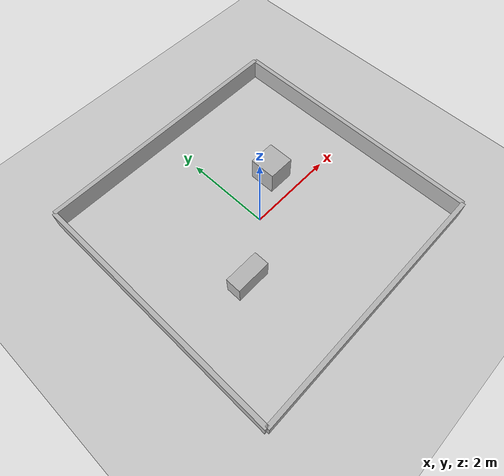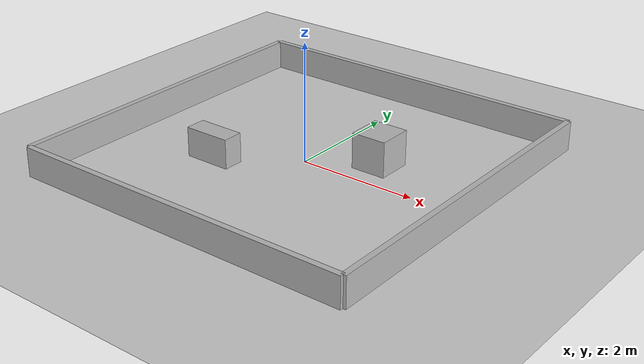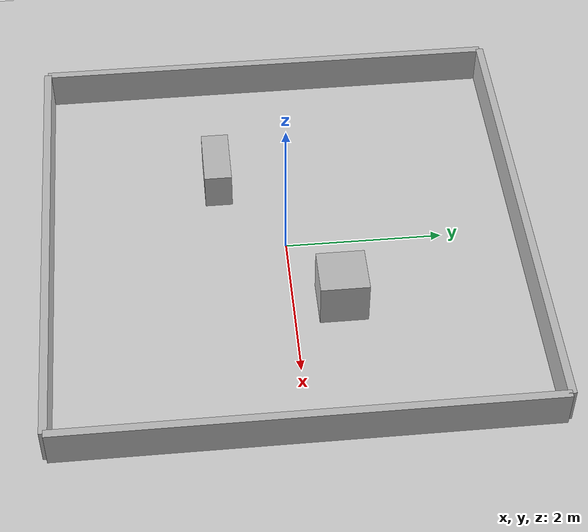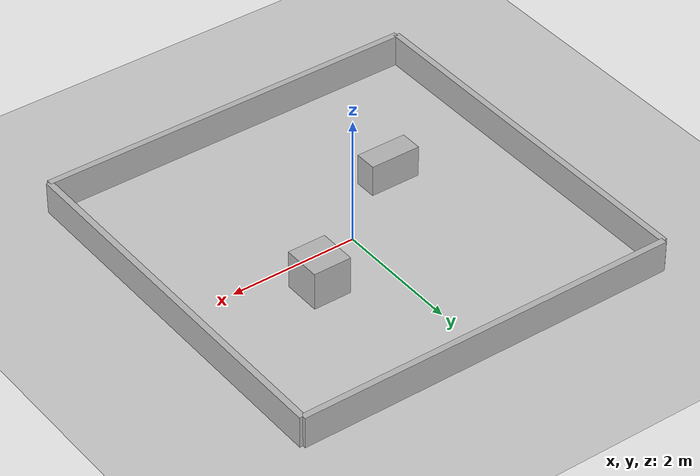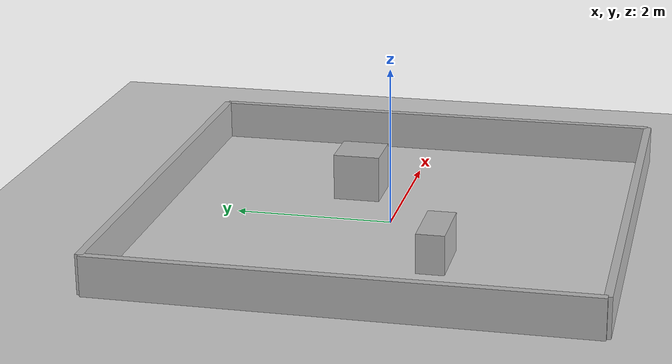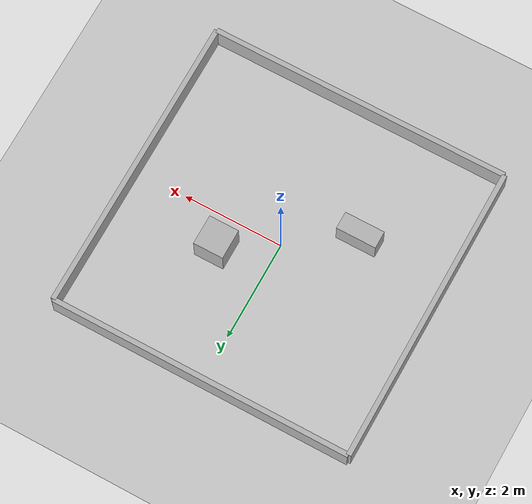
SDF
<?xml version="1.0"?>

<sdf version="1.6">

  <world name="simple_room">

    <!-- Physics -->

    <physics
        name="default_physics"
        type="ode">

      <max_step_size>
        0.001
      </max_step_size>

      <real_time_update_rate>
        1000
      </real_time_update_rate>

    </physics>

    <!-- Sun -->

    <include>
      <uri>model://sun</uri>
    </include>

    <!-- Ground -->

    <include>
      <uri>model://ground_plane</uri>
    </include>

    <!-- Room Walls -->

    <model name="room_walls">

      <static>true</static>

      <!-- North wall -->

      <link name="north_wall">

        <pose>
          0 3.0 0.25 0 0 0
        </pose>

        <collision name="collision">

          <geometry>

            <box>
              <size>6.0 0.10 0.50</size>
            </box>

          </geometry>

        </collision>

        <visual name="visual">

          <geometry>

            <box>
              <size>6.0 0.10 0.50</size>
            </box>

          </geometry>

        </visual>

      </link>

      <!-- South wall -->

      <link name="south_wall">

        <pose>
          0 -3.0 0.25 0 0 0
        </pose>

        <collision name="collision">

          <geometry>

            <box>
              <size>6.0 0.10 0.50</size>
            </box>

          </geometry>

        </collision>

        <visual name="visual">

          <geometry>

            <box>
              <size>6.0 0.10 0.50</size>
            </box>

          </geometry>

        </visual>

      </link>

      <!-- East wall -->

      <link name="east_wall">

        <pose>
          3.0 0 0.25 0 0 0
        </pose>

        <collision name="collision">

          <geometry>

            <box>
              <size>0.10 6.0 0.50</size>
            </box>

          </geometry>

        </collision>

        <visual name="visual">

          <geometry>

            <box>
              <size>0.10 6.0 0.50</size>
            </box>

          </geometry>

        </visual>

      </link>

      <!-- West wall -->

      <link name="west_wall">

        <pose>
          -3.0 0 0.25 0 0 0
        </pose>

        <collision name="collision">

          <geometry>

            <box>
              <size>0.10 6.0 0.50</size>
            </box>

          </geometry>

        </collision>

        <visual name="visual">

          <geometry>

            <box>
              <size>0.10 6.0 0.50</size>
            </box>

          </geometry>

        </visual>

      </link>

    </model>

    <!-- 내부 장애물 1 -->

    <model name="obstacle1">

      <static>true</static>

      <pose>
        1.0 0.6 0.30 0 0 0
      </pose>

      <link name="box">

        <collision name="collision">

          <geometry>

            <box>
              <size>0.6 0.6 0.6</size>
            </box>

          </geometry>

        </collision>

        <visual name="visual">

          <geometry>

            <box>
              <size>0.6 0.6 0.6</size>
            </box>

          </geometry>

        </visual>

      </link>

    </model>

    <!-- 내부 장애물 2 -->

    <model name="obstacle2">

      <static>true</static>

      <pose>
        -1.2 -0.8 0.25 0 0 0
      </pose>

      <link name="box">

        <collision name="collision">

          <geometry>

            <box>
              <size>0.8 0.35 0.5</size>
            </box>

          </geometry>

        </collision>

        <visual name="visual">

          <geometry>

            <box>
              <size>0.8 0.35 0.5</size>
            </box>

          </geometry>

        </visual>

      </link>

    </model>

  </world>

</sdf>
